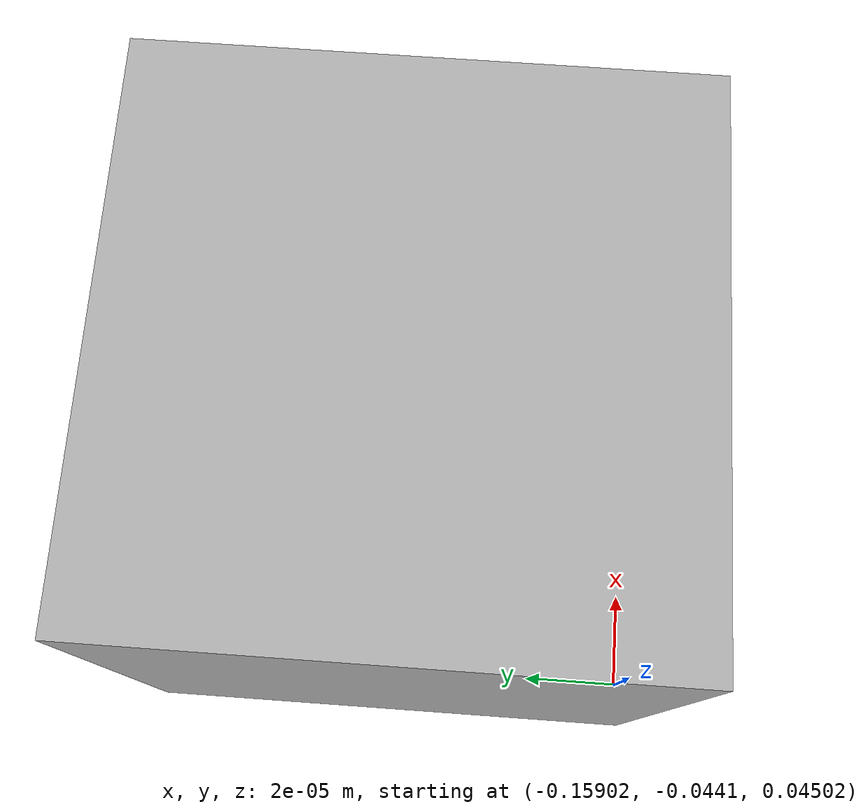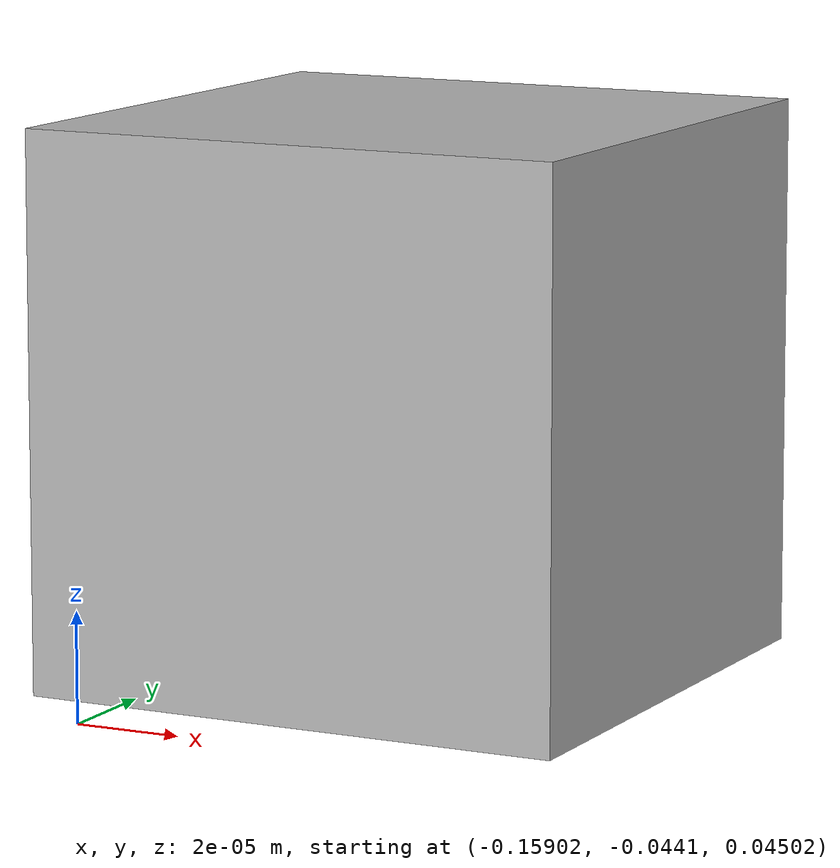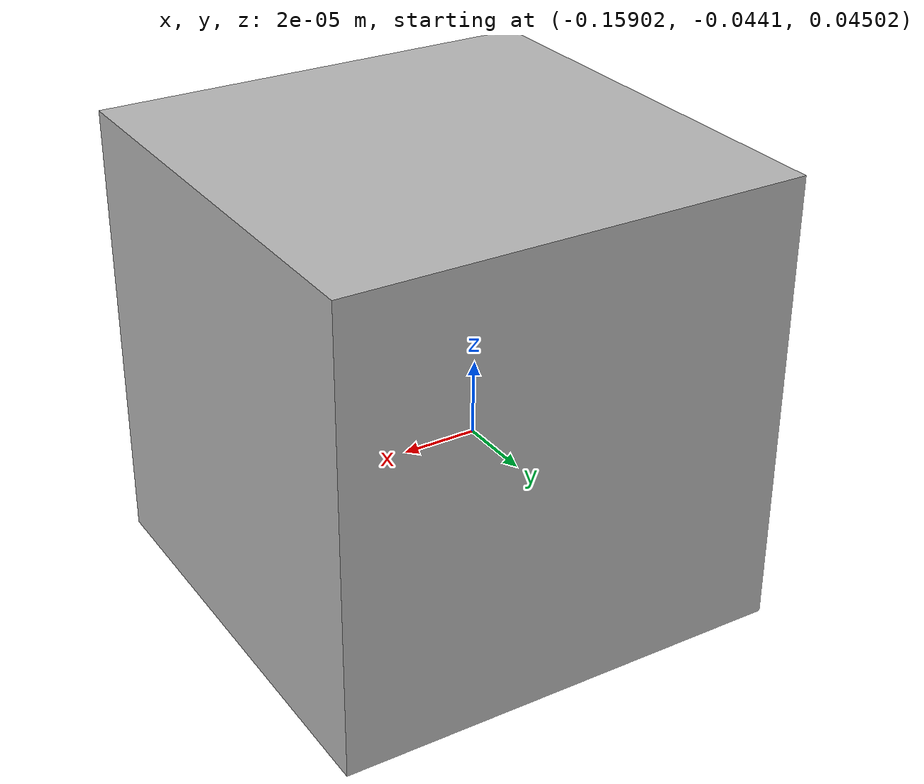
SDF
<?xml version='1.0'?>
<sdf version='1.6'>
    <model name='RPi_cam'>
    <pose>-0.158979 -0.04405 0.045074 0 -0 0</pose>
      <link name='link'>
        <inertial>
          <mass>0.00001</mass>
          <inertia>
            <ixx>2.407e-10</ixx>
            <ixy>0</ixy>
            <ixz>0</ixz>
            <iyy>2.407e-10</iyy>
            <iyz>0</iyz>
            <izz>2.407e-10</izz>
            </inertia>
        </inertial>
        <visual name='visual'>
          <geometry>
            <box>
              <size>0.0001 0.0001 0.0001</size>
            </box>
          </geometry>
        </visual>
        <sensor name='camera' type='camera'>
          <camera name='__default__'>
            <horizontal_fov>1.085</horizontal_fov>
            <image>
              <width>640</width>
              <height>480</height>
              <format>RGB_INT8</format>
            </image>
            <clip>
              <near>0.1</near>
              <far>100</far>
            </clip>
            <noise>
              <type>gaussian</type>
              <mean>0.0</mean>
              <stddev>0.007</stddev>
            </noise>
          </camera>
          <always_on>1</always_on>
          <update_rate>30</update_rate>
          <visualize>1</visualize>
          <plugin name="rpi_camera_plugin" filename="libgazebo_ros_camera.so">
            <camera_name>rpi</camera_name>
            <frameName>rpi_camera_link</frameName>
            <hack_baseline>0</hack_baseline>
          </plugin>
        </sensor>
        <self_collide>0</self_collide>
        <kinematic>0</kinematic>
      </link>
  </model>
</sdf>
